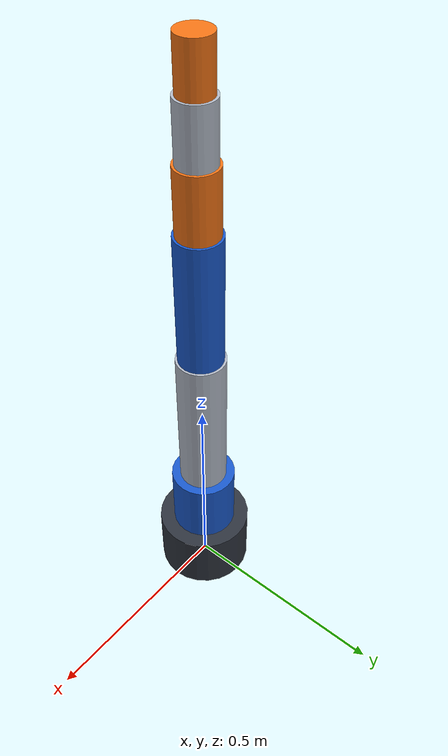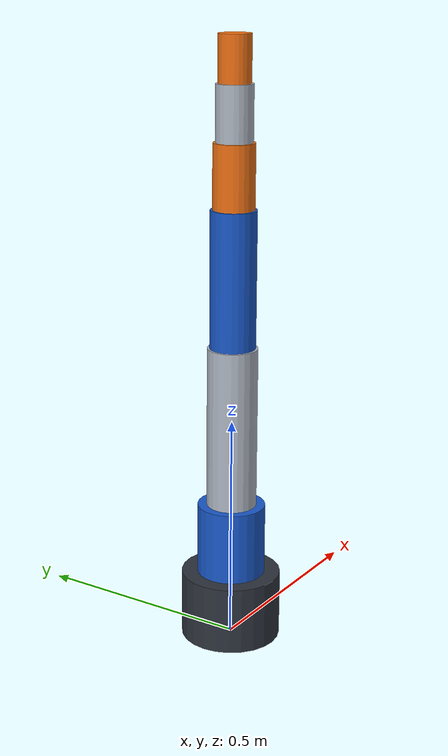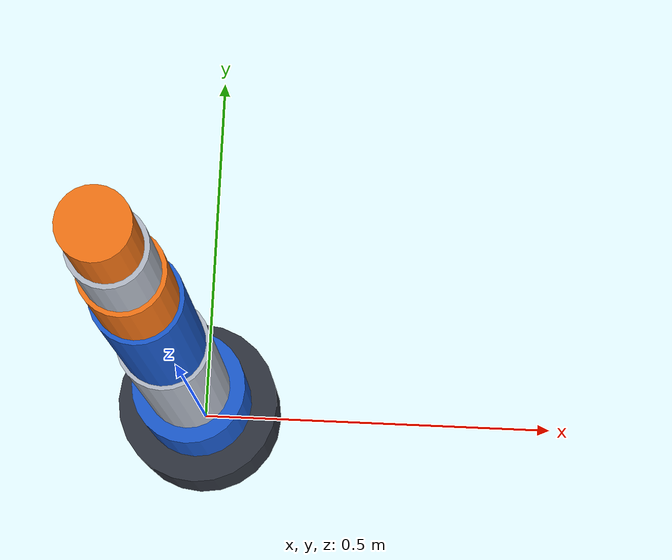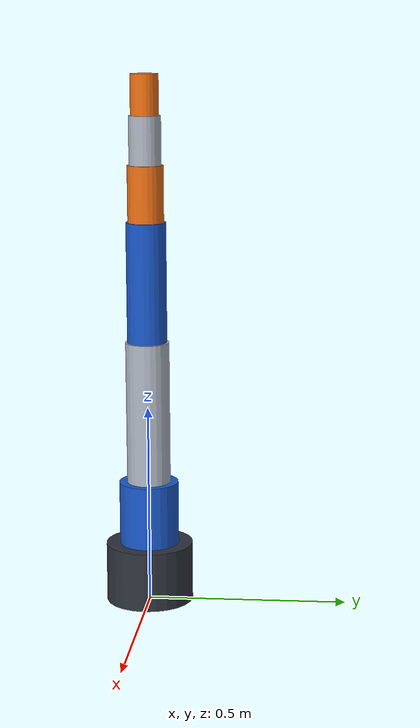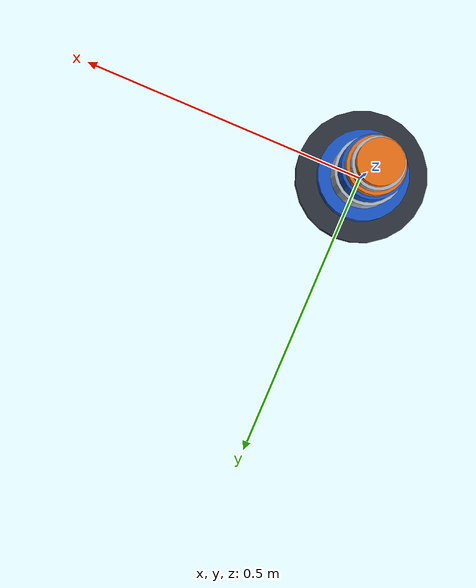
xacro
<?xml version="1.0"?>
<robot xmlns:xacro="http://www.ros.org/wiki/xacro"
       name="course_six_dof_arm">

  <!--
    Integration substitute only. This primitive model validates the complete
    ROS 2 / Gazebo control path but is not a geometric or dynamic Jaco2 model.
  -->

  <xacro:macro name="cylinder_link"
               params="name radius length mass color">
    <link name="${name}">
      <visual>
        <origin xyz="0 0 ${length / 2.0}" rpy="0 0 0"/>
        <geometry>
          <cylinder radius="${radius}" length="${length}"/>
        </geometry>
        <material name="${color}"/>
      </visual>
      <collision>
        <origin xyz="0 0 ${length / 2.0}" rpy="0 0 0"/>
        <geometry>
          <cylinder radius="${radius}" length="${length}"/>
        </geometry>
      </collision>
      <inertial>
        <origin xyz="0 0 ${length / 2.0}" rpy="0 0 0"/>
        <mass value="${mass}"/>
        <inertia
          ixx="${mass * (3.0 * radius * radius + length * length) / 12.0}"
          ixy="0.0"
          ixz="0.0"
          iyy="${mass * (3.0 * radius * radius + length * length) / 12.0}"
          iyz="0.0"
          izz="${mass * radius * radius / 2.0}"/>
      </inertial>
    </link>
    <gazebo reference="${name}">
      <gravity>false</gravity>
      <material>Gazebo/${color}</material>
    </gazebo>
  </xacro:macro>

  <xacro:macro name="revolute_joint"
               params="name parent child xyz axis lower upper effort velocity">
    <joint name="${name}" type="revolute">
      <parent link="${parent}"/>
      <child link="${child}"/>
      <origin xyz="${xyz}" rpy="0 0 0"/>
      <axis xyz="${axis}"/>
      <limit lower="${lower}" upper="${upper}"
             effort="${effort}" velocity="${velocity}"/>
      <dynamics damping="0.25" friction="0.02"/>
    </joint>
  </xacro:macro>

  <material name="DarkGrey">
    <color rgba="0.18 0.20 0.24 1.0"/>
  </material>
  <material name="Blue">
    <color rgba="0.10 0.35 0.80 1.0"/>
  </material>
  <material name="Orange">
    <color rgba="0.95 0.45 0.08 1.0"/>
  </material>
  <material name="Silver">
    <color rgba="0.70 0.73 0.78 1.0"/>
  </material>

  <link name="world"/>
  <xacro:cylinder_link
    name="base_link" radius="0.11" length="0.15" mass="4.0"
    color="DarkGrey"/>
  <joint name="world_to_base" type="fixed">
    <parent link="world"/>
    <child link="base_link"/>
    <origin xyz="0 0 0" rpy="0 0 0"/>
  </joint>

  <xacro:cylinder_link
    name="shoulder_link" radius="0.075" length="0.16" mass="2.0"
    color="Blue"/>
  <xacro:revolute_joint
    name="joint_1" parent="base_link" child="shoulder_link"
    xyz="0 0 0.15" axis="0 0 1"
    lower="-2.90" upper="2.90" effort="60" velocity="1.0"/>

  <xacro:cylinder_link
    name="upper_arm_link" radius="0.055" length="0.36" mass="2.0"
    color="Silver"/>
  <xacro:revolute_joint
    name="joint_2" parent="shoulder_link" child="upper_arm_link"
    xyz="0 0 0.16" axis="0 1 0"
    lower="-2.00" upper="2.00" effort="60" velocity="1.0"/>

  <xacro:cylinder_link
    name="forearm_link" radius="0.050" length="0.30" mass="1.5"
    color="Blue"/>
  <xacro:revolute_joint
    name="joint_3" parent="upper_arm_link" child="forearm_link"
    xyz="0 0 0.36" axis="0 1 0"
    lower="-2.60" upper="2.60" effort="50" velocity="1.0"/>

  <xacro:cylinder_link
    name="wrist_1_link" radius="0.045" length="0.14" mass="0.8"
    color="Orange"/>
  <xacro:revolute_joint
    name="joint_4" parent="forearm_link" child="wrist_1_link"
    xyz="0 0 0.30" axis="1 0 0"
    lower="-2.90" upper="2.90" effort="30" velocity="1.2"/>

  <xacro:cylinder_link
    name="wrist_2_link" radius="0.040" length="0.12" mass="0.6"
    color="Silver"/>
  <xacro:revolute_joint
    name="joint_5" parent="wrist_1_link" child="wrist_2_link"
    xyz="0 0 0.14" axis="0 1 0"
    lower="-2.00" upper="2.00" effort="25" velocity="1.2"/>

  <xacro:cylinder_link
    name="tool_link" radius="0.035" length="0.10" mass="0.4"
    color="Orange"/>
  <xacro:revolute_joint
    name="joint_6" parent="wrist_2_link" child="tool_link"
    xyz="0 0 0.12" axis="0 0 1"
    lower="-2.90" upper="2.90" effort="20" velocity="1.5"/>

  <link name="tool_frame">
    <inertial>
      <mass value="0.01"/>
      <inertia ixx="0.000001" ixy="0.0" ixz="0.0"
               iyy="0.000001" iyz="0.0" izz="0.000001"/>
    </inertial>
  </link>
  <joint name="tool_fixed_joint" type="fixed">
    <parent link="tool_link"/>
    <child link="tool_frame"/>
    <origin xyz="0 0 0.10" rpy="0 0 0"/>
  </joint>
  <gazebo reference="tool_fixed_joint">
    <preserveFixedJoint>true</preserveFixedJoint>
  </gazebo>

  <ros2_control name="GazeboSimSystem" type="system">
    <hardware>
      <plugin>gz_ros2_control/GazeboSimSystem</plugin>
    </hardware>
    <joint name="joint_1">
      <command_interface name="position">
        <param name="min">-2.90</param><param name="max">2.90</param>
      </command_interface>
      <state_interface name="position">
        <param name="initial_value">0.0</param>
      </state_interface>
      <state_interface name="velocity"/>
    </joint>
    <joint name="joint_2">
      <command_interface name="position">
        <param name="min">-2.00</param><param name="max">2.00</param>
      </command_interface>
      <state_interface name="position">
        <param name="initial_value">0.0</param>
      </state_interface>
      <state_interface name="velocity"/>
    </joint>
    <joint name="joint_3">
      <command_interface name="position">
        <param name="min">-2.60</param><param name="max">2.60</param>
      </command_interface>
      <state_interface name="position">
        <param name="initial_value">0.0</param>
      </state_interface>
      <state_interface name="velocity"/>
    </joint>
    <joint name="joint_4">
      <command_interface name="position">
        <param name="min">-2.90</param><param name="max">2.90</param>
      </command_interface>
      <state_interface name="position">
        <param name="initial_value">0.0</param>
      </state_interface>
      <state_interface name="velocity"/>
    </joint>
    <joint name="joint_5">
      <command_interface name="position">
        <param name="min">-2.00</param><param name="max">2.00</param>
      </command_interface>
      <state_interface name="position">
        <param name="initial_value">0.0</param>
      </state_interface>
      <state_interface name="velocity"/>
    </joint>
    <joint name="joint_6">
      <command_interface name="position">
        <param name="min">-2.90</param><param name="max">2.90</param>
      </command_interface>
      <state_interface name="position">
        <param name="initial_value">0.0</param>
      </state_interface>
      <state_interface name="velocity"/>
    </joint>
  </ros2_control>

  <gazebo>
    <plugin filename="gz_ros2_control-system"
            name="gz_ros2_control::GazeboSimROS2ControlPlugin">
      <robot_param>robot_description</robot_param>
      <robot_param_node>robot_state_publisher</robot_param_node>
      <parameters>$(find course_teleop_simulation)/config/controllers.yaml</parameters>
      <controller_manager_name>controller_manager</controller_manager_name>
    </plugin>
  </gazebo>
</robot>
